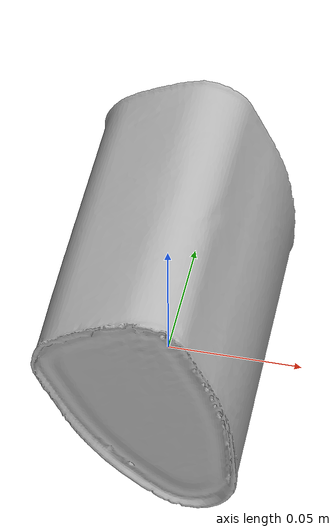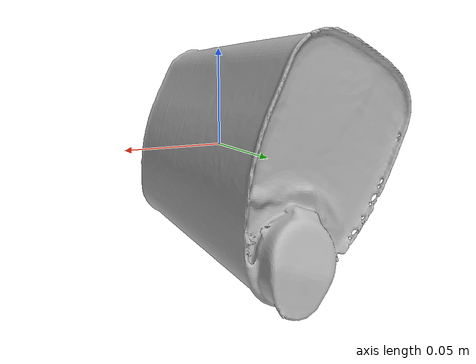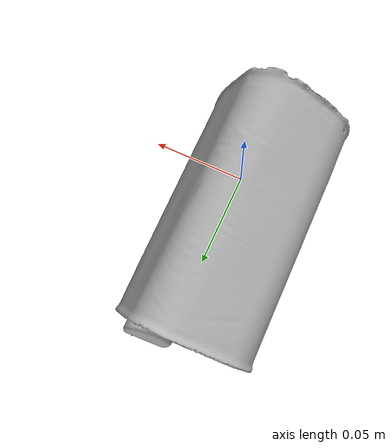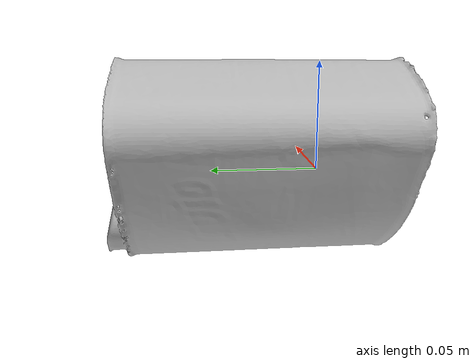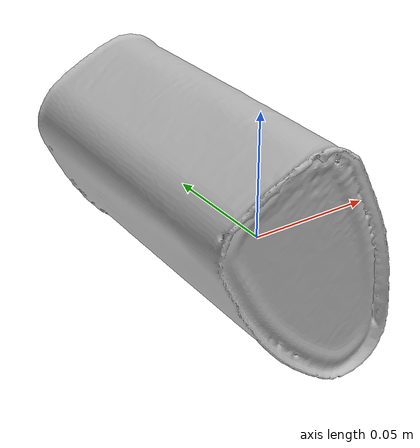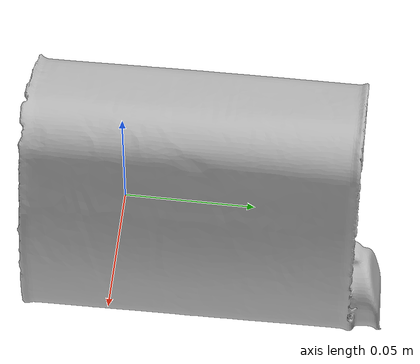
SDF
<?xml version='1.0'?>
<sdf version="1.4">
  <model name="LivioSunflowerOil">
    <static>false</static>
    <link name="link">
      <inertial>
        <pose>-0.0016398409312321 0.02854897074926363 0.004043259259757957 -1.5287051919735049 0.45964109202892195 -3.1328524288877633</pose>
        <mass>0.06705016152751292</mass>
        <inertia>
          <ixx>0.00014240175902217558</ixx>
          <ixy>-2.055757418417499e-20</ixy>
          <ixz>5.526230387967879e-22</ixz>
          <iyy>0.00011491547156853358</iyy>
          <iyz>3.369752098637317e-21</iyz>
          <izz>6.128245583171005e-05</izz>
        </inertia>
      </inertial>
      <collision name="collision">
        <geometry>
          <mesh>
            <!-- Use a downsampled mesh for collisions -->
            <uri>model:///LivioSunflowerOil/LivioSunflowerOil_250_collision.obj</uri>
	        </mesh>
        </geometry>
        <surface>
      </surface>
      </collision>
      <visual name="visual">
        <geometry>
          <mesh>
            <uri>model:///LivioSunflowerOil/LivioSunflowerOil_25k_tex.obj</uri>
	        </mesh>
        </geometry>
        <material>
          <script>
            <uri>model:///LivioSunflowerOil/LivioSunflowerOil.material</uri>
            <name>LivioSunflowerOil</name>
          </script>
        </material>
      </visual>
    </link>
  </model>
</sdf>
